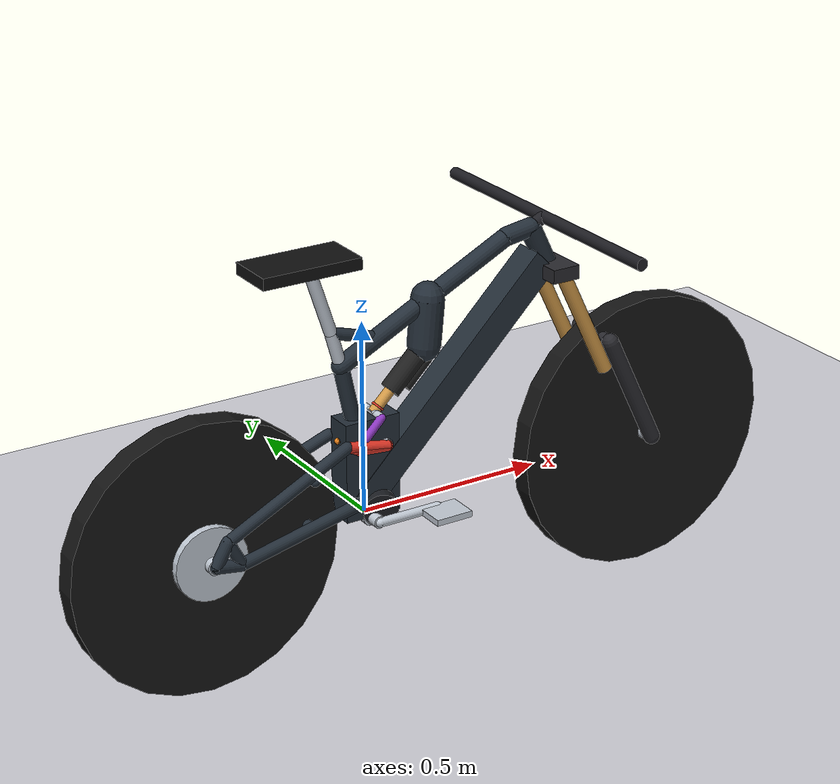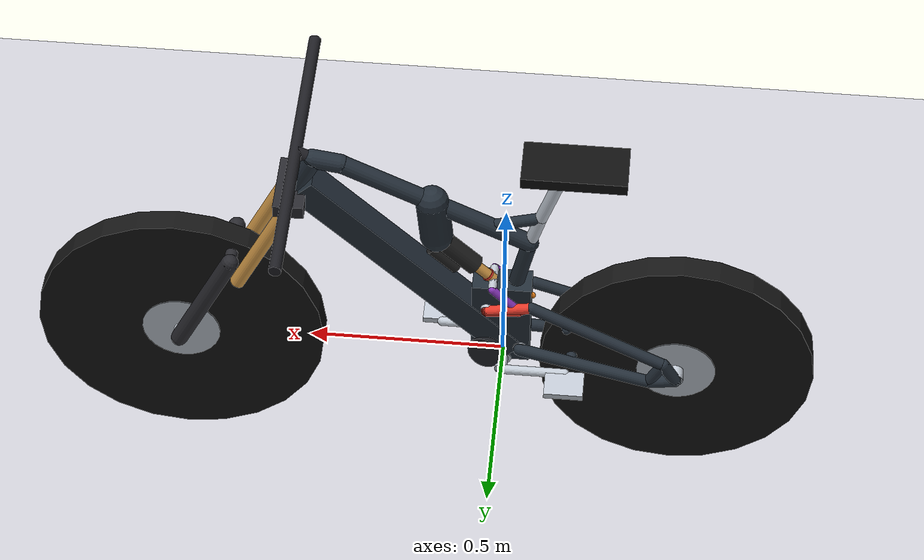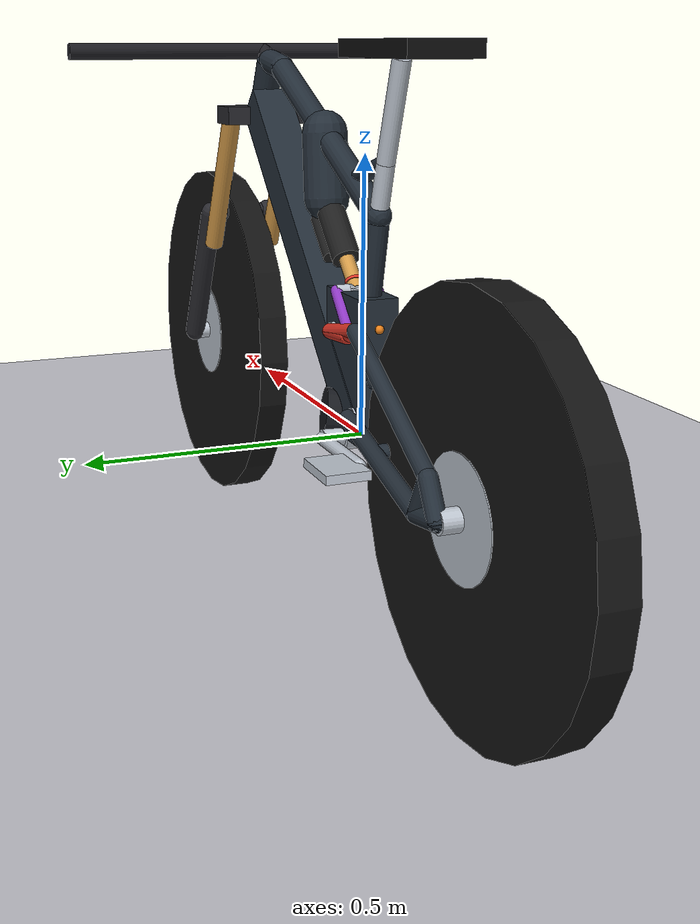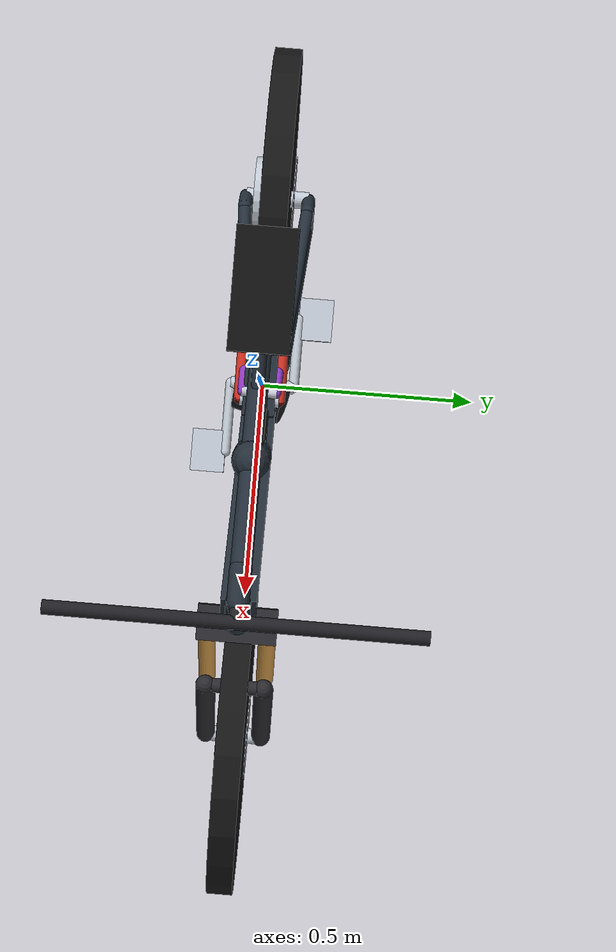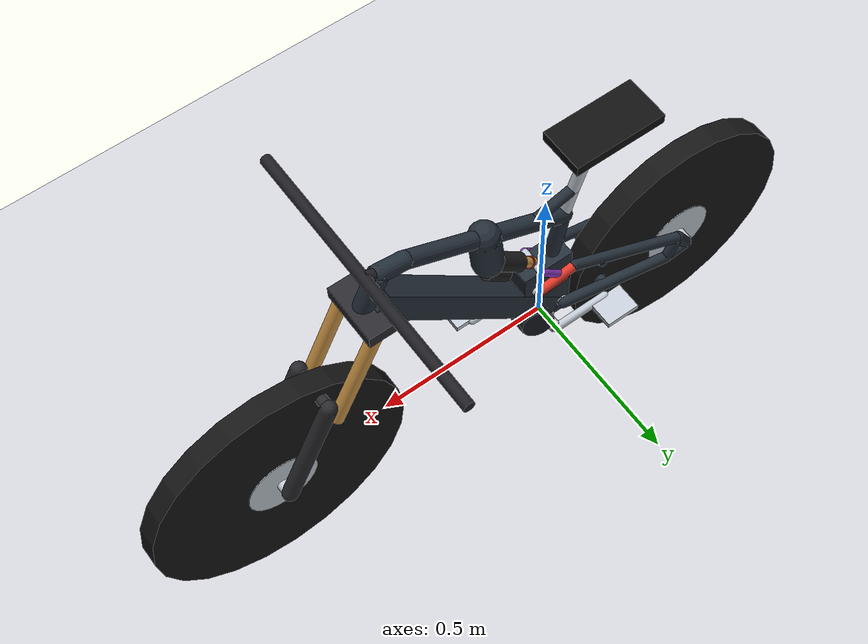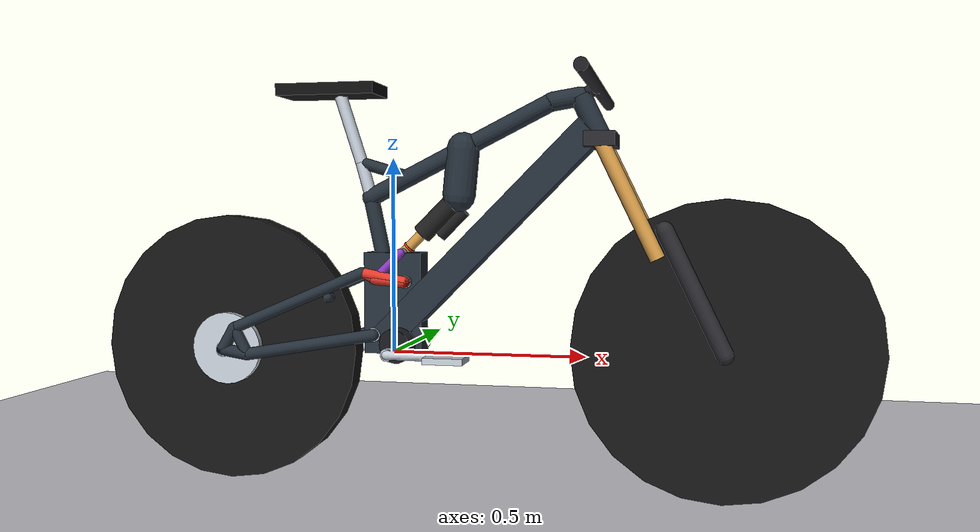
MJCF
<?xml version="1.0" encoding="utf-8"?>
<mujoco model="enduro_bike_horst_yoke">
  <compiler angle="degree" coordinate="local" inertiafromgeom="auto" autolimits="true"/>
  <option gravity="0 0 -9.81" timestep="0.002" integrator="implicitfast" iterations="100" tolerance="1e-10"/>
  <visual>
    <global elevation="-20" azimuth="140" offwidth="1920" offheight="1080"/>
    <quality shadowsize="4096"/>
  </visual>
  <asset>
    <texture name="grid_tex" type="2d" builtin="checker" width="512" height="512" rgb1="0.85 0.85 0.88" rgb2="0.75 0.75 0.78"/>
    <texture name="skybox" type="skybox" builtin="gradient" rgb1="0.4 0.6 0.8" rgb2="0.1 0.15 0.25" width="512" height="512"/>
    <material name="mat_floor" texture="grid_tex" texrepeat="25 25" reflectance="0.08"/>
    <material name="mat_frame" rgba="0.14 0.18 0.22 1.0" specular="0.4" shininess="0.5"/>
    <material name="mat_linkage" rgba="0.88 0.22 0.16 1.0" specular="0.7" shininess="0.8"/>
    <material name="mat_yoke" rgba="0.55 0.22 0.75 1.0" specular="0.6" shininess="0.7"/>
    <material name="mat_kashima" rgba="0.82 0.60 0.28 1.0" specular="0.95" shininess="0.95"/>
    <material name="mat_damper_body" rgba="0.12 0.12 0.12 1.0" specular="0.8" shininess="0.85"/>
    <material name="mat_fork_lower" rgba="0.16 0.16 0.18 1.0" specular="0.3" shininess="0.4"/>
    <material name="mat_tire" rgba="0.08 0.08 0.08 1.0" specular="0.05" shininess="0.1"/>
    <material name="mat_rim" rgba="0.22 0.24 0.26 1.0" specular="0.5" shininess="0.6"/>
    <material name="mat_metal" rgba="0.75 0.78 0.82 1.0" specular="0.85" shininess="0.9"/>
    <material name="mat_saddle" rgba="0.06 0.06 0.06 1.0" specular="0.1" shininess="0.2"/>
    <material name="mat_handlebar" rgba="0.12 0.12 0.14 1.0" specular="0.4" shininess="0.5"/>
    <material name="mat_pivot_yellow" rgba="0.98 0.85 0.12 1.0" specular="0.9" shininess="0.9"/>
    <material name="mat_stand" rgba="0.22 0.25 0.30 1.0" specular="0.5" shininess="0.6"/>
    <material name="mat_obstacle" rgba="0.85 0.50 0.15 1.0" specular="0.4" shininess="0.4"/>
    <material name="mat_pit" rgba="0.22 0.35 0.55 1.0" specular="0.4" shininess="0.5"/>
    <material name="mat_motor" rgba="0.10 0.11 0.13 1.0" specular="0.6" shininess="0.7"/>
    <material name="mat_battery" rgba="0.08 0.08 0.10 1.0" specular="0.5" shininess="0.6"/>
    <material name="mat_cg_marker" rgba="0.95 0.20 0.85 0.9" specular="0.9" shininess="0.9"/>
    <material name="mat_rider" rgba="0.18 0.38 0.68 0.95" specular="0.4" shininess="0.5"/>
  </asset>
  <worldbody>
    <light directional="true" diffuse="0.85 0.85 0.85" specular="0.25 0.25 0.25" pos="1.5 -2.5 3.5" dir="-0.3 0.6 -1.0"/>
    <light directional="true" diffuse="0.45 0.45 0.45" specular="0.1 0.1 0.1" pos="-2.5 2.5 3.0" dir="0.6 -0.6 -1.0"/>
    <geom name="floor" type="plane" pos="0 0 -0.349500" size="50 50 0.1" material="mat_floor" conaffinity="1" contype="1" friction="1.3 0.005 0.0001"/>
    <body name="frame" pos="0 0 0">
      <geom name="geom_bb_shell" type="cylinder" fromto="0 -0.0365 0 0 0.0365 0" size="0.024" mass="0.30" material="mat_metal"/>
      <geom name="geom_motor_core" type="cylinder" fromto="0.015 -0.055 0.020 0.045 0.055 0.035" size="0.045" mass="2.90" material="mat_motor"/>
      <geom name="geom_crank_spindle" type="cylinder" fromto="0 -0.075000 0 0 0.075000 0" size="0.016" mass="0.100" material="mat_metal" contype="0" conaffinity="0"/>
      <geom name="geom_crank_arm_front" type="capsule" fromto="0 -0.075000 0 0.165000 -0.075000 0.000000" size="0.012" mass="0.200" material="mat_metal" contype="0" conaffinity="0"/>
      <geom name="geom_pedal_front" type="box" pos="0.165000 -0.115000 0.000000" size="0.050 0.040 0.008" mass="0.175" material="mat_metal" contype="0" conaffinity="0"/>
      <geom name="geom_crank_arm_rear" type="capsule" fromto="0 0.075000 0 -0.165000 0.075000 0.000000" size="0.012" mass="0.200" material="mat_metal" contype="0" conaffinity="0"/>
      <geom name="geom_pedal_rear" type="box" pos="-0.165000 0.115000 0.000000" size="0.050 0.040 0.008" mass="0.175" material="mat_metal" contype="0" conaffinity="0"/>
      <geom name="geom_downtube" type="box" pos="0.239137 0.000000 0.295958" size="0.378572 0.038 0.037848" euler="0 -45.296452 0" mass="0.60" material="mat_frame"/>
      <geom name="geom_battery_pack" type="capsule" fromto="0.052834 0.000000 0.106886 0.292834 0.000000 0.346886" size="0.032" mass="4.30" material="mat_battery"/>
      <geom name="geom_headtube" type="cylinder" fromto="0.532605 0.000000 0.538145 0.480000 0.000000 0.646000" size="0.027" mass="0.40" material="mat_frame"/>
      <geom name="geom_toptube_bridge" type="capsule" fromto="0.480000 0.000000 0.646000 0.410000 0.000000 0.635000" size="0.024" mass="0.25" material="mat_frame"/>
      <geom name="geom_toptube_main" type="capsule" fromto="0.410000 0.000000 0.635000 -0.060000 0.000000 0.400000" size="0.023" mass="0.45" material="mat_frame"/>
      <geom name="geom_seattube" type="capsule" fromto="-0.060000 0.000000 0.400000 -0.030000 0.000000 0.258000" size="0.020" mass="0.05" material="mat_frame"/>
      <geom name="geom_frame_casting" type="box" pos="0.005661 0 0.129000" size="0.075 0.036 0.130" mass="0.60" material="mat_frame" contype="0" conaffinity="0"/>
      <geom name="geom_seatpost" type="cylinder" fromto="-0.060000 0.000000 0.400000 -0.085000 0.000000 0.490000" size="0.016" mass="0.120129" material="mat_metal"/>
      <geom name="geom_seatpost_upper" type="cylinder" fromto="-0.085000 0.000000 0.490000 -0.140206 0.000000 0.660000" size="0.016" mass="0.229871" material="mat_metal"/>
      <geom name="geom_seat_gusset" type="capsule" fromto="-0.085000 0.000000 0.490000 0.043400 0.000000 0.451700" size="0.015" mass="0.10" material="mat_frame"/>
      <geom name="geom_frame_junction" type="capsule" fromto="0.184400 0.000000 0.522200 0.173221 0.000000 0.403651" size="0.042" mass="0.10" material="mat_frame"/>
      <geom name="geom_saddle" type="box" pos="-0.164206 0.000000 0.675000" size="0.13 0.065 0.015" mass="0.55" material="mat_saddle"/>
      <geom name="geom_p0_mount" type="cylinder" fromto="-0.044902 -0.035 0.046393 -0.044902 0.035 0.046393" size="0.016" mass="0.10" material="mat_metal"/>
      <geom name="geom_p5_mount" type="cylinder" fromto="0.041321 -0.048 0.184457 0.041321 0.048 0.184457" size="0.013" mass="0.10" material="mat_metal"/>
      <geom name="geom_p7_mount" type="cylinder" fromto="0.173221 -0.020 0.403651 0.173221 0.020 0.403651" size="0.012" mass="0.10" material="mat_metal"/>
      <site name="site_BB" pos="0.000000 0.000000 0.000000" size="0.008" rgba="0.9 0.6 0.1 1.0"/>
      <site name="site_P0" pos="-0.044902 0.000000 0.046393" size="0.008" rgba="0.2 0.8 0.2 1.0"/>
      <site name="site_P5" pos="0.041321 0.000000 0.184457" size="0.008" rgba="0.8 0.2 0.2 1.0"/>
      <site name="site_P7" pos="0.173221 0.000000 0.403651" size="0.008" rgba="0.1 0.6 0.9 1.0"/>
      <site name="site_P8" pos="0.410000 0.000000 0.635000" size="0.006" rgba="0.5 0.5 0.5 1.0"/>
      <site name="site_P9" pos="-0.085000 0.000000 0.490000" size="0.006" rgba="0.5 0.5 0.5 1.0"/>
      <site name="site_P10" pos="-0.060000 0.000000 0.400000" size="0.006" rgba="0.5 0.5 0.5 1.0"/>
      <site name="site_P11" pos="0.480000 0.000000 0.646000" size="0.008" rgba="0.9 0.1 0.1 1.0"/>
      <site name="site_HT_bot" pos="0.532605 0.000000 0.538145" size="0.008" rgba="0.9 0.1 0.1 1.0"/>
      <site name="site_CG" pos="0.149767 0.000000 0.183505" size="0.012" rgba="0.95 0.20 0.85 0.9"/>
      <site name="site_top_tube_kink" pos="0.410000 0.000000 0.635000" size="0.005" rgba="0.5 0.5 0.5 0.8"/>
      <site name="site_seat_collar" pos="-0.085000 0.000000 0.490000" size="0.005" rgba="0.5 0.5 0.5 0.8"/>
      <site name="site_seatpost_top" pos="-0.140206 0.000000 0.660000" size="0.005" rgba="0.5 0.5 0.5 0.8"/>
      <site name="site_seat_tube_junction" pos="-0.060000 0.000000 0.400000" size="0.005" rgba="0.5 0.5 0.5 0.8"/>
      <site name="site_headtube_top" pos="0.480000 0.000000 0.646000" size="0.006" rgba="0.9 0.1 0.1 0.8"/>
      <site name="site_headtube_bottom" pos="0.532605 0.000000 0.538145" size="0.006" rgba="0.9 0.1 0.1 0.8"/>
      <body name="steer" pos="0.532605 0.000000 0.538145">
        <joint name="steer_joint" type="hinge" pos="0 0 0" axis="-0.438371 0.000000 0.898794" range="-60 60" damping="1.5"/>
        <geom name="geom_steerer_tube" type="cylinder" fromto="0 0 0 -0.052605 0.000000 0.107855" size="0.014" mass="0.25" material="mat_metal"/>
        <geom name="geom_stem" type="cylinder" fromto="-0.052605 0.000000 0.107855 -0.012605 0.000000 0.127855" size="0.016" mass="0.15" material="mat_handlebar"/>
        <geom name="geom_handlebar" type="cylinder" fromto="-0.012605 -0.40 0.127855 -0.012605 0.40 0.127855" size="0.0155" mass="0.40" material="mat_handlebar"/>
        <geom name="geom_fork_crown" type="box" pos="0 0 0" size="0.038 0.085 0.018" mass="0.30" material="mat_fork_lower"/>
        <geom name="geom_stanchion_l" type="cylinder" fromto="0 0.065 0 0.140279 0.065 -0.287614" size="0.019" mass="0.425" material="mat_kashima"/>
        <geom name="geom_stanchion_r" type="cylinder" fromto="0 -0.065 0 0.140279 -0.065 -0.287614" size="0.019" mass="0.425" material="mat_kashima"/>
        <body name="fork_lower" pos="0 0 0">
          <joint name="fork_travel" type="slide" pos="0 0 0" axis="-0.438371 0.000000 0.898794" range="0 0.180000" stiffness="0" damping="0" springref="0"/>
          <geom name="geom_fork_lower_l" type="capsule" fromto="0.155789 0.065 -0.219043 0.300451 0.065 -0.515645" size="0.022" mass="0.55" material="mat_fork_lower"/>
          <geom name="geom_fork_lower_r" type="capsule" fromto="0.155789 -0.065 -0.219043 0.300451 -0.065 -0.515645" size="0.022" mass="0.55" material="mat_fork_lower"/>
          <geom name="geom_fork_arch" type="capsule" fromto="0.155789 -0.065 -0.219043 0.155789 0.065 -0.219043" size="0.016" mass="0.25" material="mat_fork_lower"/>
          <geom name="geom_front_dropout" type="cylinder" fromto="0.300451 -0.065 -0.515645 0.300451 0.065 -0.515645" size="0.012" mass="0.15" material="mat_metal"/>
          <site name="site_PFA" pos="0.300451 0.000000 -0.515645" size="0.008" rgba="0.1 0.7 0.9 1.0"/>
          <body name="front_wheel" pos="0.300451 0.000000 -0.515645">
            <joint name="front_wheel_spin" type="hinge" pos="0 0 0" axis="0 1 0" damping="0.01"/>
            <geom name="geom_front_hub" type="cylinder" fromto="0 -0.055 0 0 0.055 0" size="0.018" mass="0.35" material="mat_metal"/>
            <geom name="geom_front_rim" type="cylinder" fromto="0 -0.015 0 0 0.015 0" size="0.320" mass="0.45" material="mat_rim" contype="0" conaffinity="0"/>
            <geom name="geom_front_tire" type="cylinder" fromto="0 -0.030 0 0 0.030 0" size="0.372000" mass="1.35" material="mat_tire" contype="1" conaffinity="1" friction="1.2 0.005 0.0001"/>
            <geom name="geom_front_rotor" type="cylinder" fromto="0 0.032 0 0 0.034 0" size="0.1015" mass="0.25" material="mat_metal" contype="0" conaffinity="0"/>
          </body>
        </body>
      </body>
      <body name="chainstay" pos="-0.044902 0.000000 0.046393">
        <joint name="main_pivot" type="hinge" pos="0 0 0" axis="0 1 0" damping="0.5"/>
        <geom name="geom_cs_sleeve" type="cylinder" fromto="0 -0.040 0 0 0.040 0" size="0.018" mass="0.25" material="mat_metal"/>
        <geom name="geom_cs_left" type="capsule" fromto="0 0.045 0 -0.334216 0.074 -0.054835" size="0.016" mass="0.40" material="mat_frame"/>
        <geom name="geom_cs_right" type="capsule" fromto="0 -0.045 0 -0.334216 -0.074 -0.054835" size="0.016" mass="0.40" material="mat_frame"/>
        <geom name="geom_cs_bridge" type="capsule" fromto="-0.133687 -0.055 -0.021934 -0.133687 0.055 -0.021934" size="0.014" mass="0.20" material="mat_frame"/>
        <site name="site_P2_cs" pos="-0.334216 0.000000 -0.054835" size="0.008" rgba="0.1 0.9 0.1 1.0"/>
        <body name="seatstay" pos="-0.334216 0.000000 -0.054835">
          <joint name="horst_pivot" type="hinge" pos="0 0 0" axis="0 1 0" damping="0.3"/>
          <geom name="geom_horst_sleeve_l" type="cylinder" fromto="0 0.068 0 0 0.080 0" size="0.013" mass="0.075" material="mat_metal"/>
          <geom name="geom_horst_sleeve_r" type="cylinder" fromto="0 -0.080 0 0 -0.068 0" size="0.013" mass="0.075" material="mat_metal"/>
          <geom name="geom_ss_left" type="capsule" fromto="-0.034882 0.074 0.068429 0.307403 0.045 0.215041" size="0.015" mass="0.25" material="mat_frame"/>
          <geom name="geom_ss_right" type="capsule" fromto="-0.034882 -0.074 0.068429 0.307403 -0.045 0.215041" size="0.015" mass="0.25" material="mat_frame"/>
          <geom name="geom_dropout_bottom_l" type="capsule" fromto="0 0.074 0 -0.068376 0.074 0.010942" size="0.016" mass="0.045" material="mat_frame"/>
          <geom name="geom_dropout_rear_l" type="capsule" fromto="-0.068376 0.074 0.010942 -0.034882 0.074 0.068429" size="0.016" mass="0.045" material="mat_frame"/>
          <geom name="geom_dropout_front_l" type="capsule" fromto="0 0.074 0 -0.034882 0.074 0.068429" size="0.015" mass="0.045" material="mat_frame"/>
          <geom name="geom_dropout_bottom_r" type="capsule" fromto="0 -0.074 0 -0.068376 -0.074 0.010942" size="0.016" mass="0.045" material="mat_frame"/>
          <geom name="geom_dropout_rear_r" type="capsule" fromto="-0.068376 -0.074 0.010942 -0.034882 -0.074 0.068429" size="0.016" mass="0.045" material="mat_frame"/>
          <geom name="geom_dropout_front_r" type="capsule" fromto="0 -0.074 0 -0.034882 -0.074 0.068429" size="0.015" mass="0.045" material="mat_frame"/>
          <geom name="geom_ss_bridge" type="capsule" fromto="0.215182 -0.050 0.150528 0.215182 0.050 0.150528" size="0.013" mass="0.13" material="mat_frame"/>
          <site name="site_P3_ss" pos="0.307403 0.000000 0.215041" size="0.008" rgba="0.9 0.5 0.1 1.0"/>
          <site name="site_P12_ss" pos="-0.034882 0.000000 0.068429" size="0.007" rgba="0.9 0.6 0.1 1.0"/>
          <site name="site_PRA" pos="-0.068376 0.000000 0.010942" size="0.008" rgba="0.2 0.4 0.9 1.0"/>
          <body name="rear_wheel" pos="-0.068376 0.000000 0.010942">
            <joint name="rear_wheel_spin" type="hinge" pos="0 0 0" axis="0 1 0" damping="0.01"/>
            <geom name="geom_rear_hub" type="cylinder" fromto="0 -0.074 0 0 0.074 0" size="0.020" mass="0.30" material="mat_metal"/>
            <geom name="geom_rear_rim" type="cylinder" fromto="0 -0.015 0 0 0.015 0" size="0.300" mass="0.40" material="mat_rim" contype="0" conaffinity="0"/>
            <geom name="geom_rear_tire" type="cylinder" fromto="0 -0.032 0 0 0.032 0" size="0.352000" mass="1.50" material="mat_tire" contype="1" conaffinity="1" friction="1.2 0.005 0.0001"/>
            <geom name="geom_rear_cassette" type="cylinder" fromto="0 -0.055 0 0 -0.035 0" size="0.095" mass="0.40" material="mat_metal" contype="0" conaffinity="0"/>
            <geom name="geom_rear_rotor" type="cylinder" fromto="0 0.038 0 0 0.040 0" size="0.1015" mass="0.20" material="mat_metal" contype="0" conaffinity="0"/>
          </body>
        </body>
      </body>
      <body name="rocker" pos="0.041321 0.000000 0.184457">
        <joint name="rocker_frame_pivot" type="hinge" pos="0 0 0" axis="0 1 0" damping="0.3"/>
        <geom name="geom_rocker_sleeve" type="cylinder" fromto="0 -0.045 0 0 0.045 0" size="0.016" mass="0.16" material="mat_metal"/>
        <geom name="geom_roc_arm_l1" type="capsule" fromto="0 0.045 0 -0.113037 0.045 0.022142" size="0.014" mass="0.04" material="mat_linkage"/>
        <geom name="geom_roc_arm_r1" type="capsule" fromto="0 -0.045 0 -0.113037 -0.045 0.022142" size="0.014" mass="0.04" material="mat_linkage"/>
        <geom name="geom_roc_arm_l2" type="capsule" fromto="0 0.045 0 -0.079867 0.045 0.007006" size="0.014" mass="0.04" material="mat_linkage"/>
        <geom name="geom_roc_arm_r2" type="capsule" fromto="0 -0.045 0 -0.079867 -0.045 0.007006" size="0.014" mass="0.04" material="mat_linkage"/>
        <geom name="geom_roc_arm_l3" type="capsule" fromto="-0.113037 0.045 0.022142 -0.079867 0.045 0.007006" size="0.012" mass="0.04" material="mat_linkage"/>
        <geom name="geom_roc_arm_r3" type="capsule" fromto="-0.113037 -0.045 0.022142 -0.079867 -0.045 0.007006" size="0.012" mass="0.04" material="mat_linkage"/>
        <site name="site_P3_rocker" pos="-0.113037 0.000000 0.022142" size="0.008" rgba="0.9 0.5 0.1 1.0"/>
        <site name="site_P4_rocker" pos="-0.079867 0.000000 0.007006" size="0.008" rgba="0.7 0.2 0.8 1.0"/>
        <body name="shock_yoke" pos="-0.079867 0.000000 0.007006">
          <joint name="yoke_pivot" type="hinge" pos="0 0 0" axis="0 1 0" damping="0.2"/>
          <geom name="geom_yoke_pivot_p4" type="cylinder" fromto="0 -0.044 0 0 0.044 0" size="0.011" mass="0.06" material="mat_metal"/>
          <geom name="geom_yoke_arm_l" type="capsule" fromto="0 0.040 0 0.066954 0.038 0.067087" size="0.011" mass="0.08" material="mat_yoke"/>
          <geom name="geom_yoke_arm_r" type="capsule" fromto="0 -0.040 0 0.066954 -0.038 0.067087" size="0.011" mass="0.08" material="mat_yoke"/>
          <geom name="geom_yoke_bridge" type="capsule" fromto="0.050215 -0.038 0.050315 0.050215 0.038 0.050315" size="0.009" mass="0.04" material="mat_yoke"/>
          <geom name="geom_yoke_eyelet" type="cylinder" fromto="0.066954 -0.040 0.067087 0.066954 0.040 0.067087" size="0.011" mass="0.04" material="mat_metal"/>
          <site name="site_P6_yoke" pos="0.066954 0.000000 0.067087" size="0.008" rgba="0.6 0.1 0.7 1.0"/>
          <body name="shock_shaft" pos="0.066954 0.000000 0.067087">
            <geom name="geom_shock_lower_eyelet" type="cylinder" fromto="0 -0.016 0 0 0.016 0" size="0.011" mass="0.06" material="mat_metal"/>
            <geom name="geom_shock_shaft" type="cylinder" fromto="0 0 0 0.102428 0.000000 0.102632" size="0.014" mass="0.14" material="mat_kashima"/>
            <geom name="geom_shock_travel_indicator" type="cylinder" fromto="0.011302 0.000000 0.011325 0.014834 0.000000 0.014864" size="0.0165" mass="0.0" material="mat_linkage" contype="0" conaffinity="0"/>
            <body name="shock_body" pos="0.144813 0.000000 0.145101">
              <inertial pos="-0.033395 0.011400 -0.028962" quat="-0.10166406 0.38183084 -0.06020627 0.91664870" mass="0.400000" diaginertia="0.00084836 0.00071226 0.00023249"/>
              <joint name="shock_stroke" type="slide" pos="0 0 0" axis="-0.706403 -0.000000 -0.707810" range="0 0.065000" stiffness="0" damping="0" springref="0"/>
              <geom name="geom_shock_trunnion_boss_l" type="cylinder" fromto="0 0.019 0 0 0.027000 0" size="0.013" mass="0.02" material="mat_metal"/>
              <geom name="geom_shock_trunnion_boss_r" type="cylinder" fromto="0 -0.019 0 0 -0.027000 0" size="0.013" mass="0.02" material="mat_metal"/>
              <geom name="geom_shock_trunnion_overhang" type="cylinder" fromto="0 0 0 0.009890 0.000000 0.009909" size="0.024" mass="0.04" material="mat_damper_body"/>
              <geom name="geom_shock_body" type="cylinder" fromto="0 0 0 -0.097484 -0.000000 -0.097678" size="0.026" mass="0.18" material="mat_damper_body"/>
              <geom name="geom_shock_piggyback" type="cylinder" fromto="0.011350 0.008000 -0.036758 -0.052226 0.008000 -0.100461" size="0.018" mass="0.10" material="mat_damper_body"/>
              <geom name="geom_shock_piggy_bridge" type="cylinder" fromto="-0.021192 -0.000000 -0.021234 0.002873 0.008000 -0.045252" size="0.010" mass="0.04" material="mat_damper_body"/>
              <site name="site_P7_shock" pos="0 0 0" size="0.008" rgba="0.1 0.6 0.9 1.0"/>
            </body>
          </body>
        </body>
      </body>
    </body>
  </worldbody>
  <equality>
    <connect name="seatstay_rocker_joint" site1="site_P3_ss" site2="site_P3_rocker" solref="0.0005 1" solimp="0.99 0.999 0.0001 0.5 2"/>
    <connect name="shock_frame_joint" site1="site_P7_shock" site2="site_P7" solref="0.0005 1" solimp="0.99 0.999 0.0001 0.5 2"/>
  </equality>
  <contact>
    <exclude body1="frame" body2="steer"/>
    <exclude body1="frame" body2="fork_lower"/>
    <exclude body1="frame" body2="chainstay"/>
    <exclude body1="frame" body2="seatstay"/>
    <exclude body1="frame" body2="rocker"/>
    <exclude body1="frame" body2="shock_yoke"/>
    <exclude body1="frame" body2="shock_shaft"/>
    <exclude body1="frame" body2="shock_body"/>
    <exclude body1="frame" body2="front_wheel"/>
    <exclude body1="frame" body2="rear_wheel"/>
    <exclude body1="steer" body2="fork_lower"/>
    <exclude body1="steer" body2="chainstay"/>
    <exclude body1="steer" body2="seatstay"/>
    <exclude body1="steer" body2="rocker"/>
    <exclude body1="steer" body2="shock_yoke"/>
    <exclude body1="steer" body2="shock_shaft"/>
    <exclude body1="steer" body2="shock_body"/>
    <exclude body1="steer" body2="front_wheel"/>
    <exclude body1="steer" body2="rear_wheel"/>
    <exclude body1="fork_lower" body2="chainstay"/>
    <exclude body1="fork_lower" body2="seatstay"/>
    <exclude body1="fork_lower" body2="rocker"/>
    <exclude body1="fork_lower" body2="shock_yoke"/>
    <exclude body1="fork_lower" body2="shock_shaft"/>
    <exclude body1="fork_lower" body2="shock_body"/>
    <exclude body1="fork_lower" body2="front_wheel"/>
    <exclude body1="fork_lower" body2="rear_wheel"/>
    <exclude body1="chainstay" body2="seatstay"/>
    <exclude body1="chainstay" body2="rocker"/>
    <exclude body1="chainstay" body2="shock_yoke"/>
    <exclude body1="chainstay" body2="shock_shaft"/>
    <exclude body1="chainstay" body2="shock_body"/>
    <exclude body1="chainstay" body2="front_wheel"/>
    <exclude body1="chainstay" body2="rear_wheel"/>
    <exclude body1="seatstay" body2="rocker"/>
    <exclude body1="seatstay" body2="shock_yoke"/>
    <exclude body1="seatstay" body2="shock_shaft"/>
    <exclude body1="seatstay" body2="shock_body"/>
    <exclude body1="seatstay" body2="front_wheel"/>
    <exclude body1="seatstay" body2="rear_wheel"/>
    <exclude body1="rocker" body2="shock_yoke"/>
    <exclude body1="rocker" body2="shock_shaft"/>
    <exclude body1="rocker" body2="shock_body"/>
    <exclude body1="rocker" body2="front_wheel"/>
    <exclude body1="rocker" body2="rear_wheel"/>
    <exclude body1="shock_yoke" body2="shock_shaft"/>
    <exclude body1="shock_yoke" body2="shock_body"/>
    <exclude body1="shock_yoke" body2="front_wheel"/>
    <exclude body1="shock_yoke" body2="rear_wheel"/>
    <exclude body1="shock_shaft" body2="shock_body"/>
    <exclude body1="shock_shaft" body2="front_wheel"/>
    <exclude body1="shock_shaft" body2="rear_wheel"/>
    <exclude body1="shock_body" body2="front_wheel"/>
    <exclude body1="shock_body" body2="rear_wheel"/>
    <exclude body1="front_wheel" body2="rear_wheel"/>
  </contact>
  <actuator>
    <position name="steer_servo" joint="steer_joint" kp="150" kv="15" ctrlrange="-45 45"/>
    <motor name="rear_drive_motor" joint="rear_wheel_spin" gear="1" ctrlrange="-150 150"/>
    <motor name="front_brake" joint="front_wheel_spin" gear="1" ctrlrange="-200 0"/>
    <motor name="rear_brake" joint="rear_wheel_spin" gear="1" ctrlrange="-200 0"/>
  </actuator>
  <sensor>
    <jointpos name="sensor_shock_stroke" joint="shock_stroke"/>
    <jointvel name="sensor_shock_velocity" joint="shock_stroke"/>
    <jointpos name="sensor_fork_travel" joint="fork_travel"/>
    <jointvel name="sensor_fork_velocity" joint="fork_travel"/>
    <jointpos name="sensor_steer_angle" joint="steer_joint"/>
    <jointvel name="sensor_steer_velocity" joint="steer_joint"/>
    <jointpos name="sensor_chainstay_angle" joint="main_pivot"/>
    <jointpos name="sensor_horst_angle" joint="horst_pivot"/>
    <jointpos name="sensor_rocker_angle" joint="rocker_frame_pivot"/>
    <jointpos name="sensor_yoke_angle" joint="yoke_pivot"/>
    <jointvel name="sensor_front_wheel_speed" joint="front_wheel_spin"/>
    <jointvel name="sensor_rear_wheel_speed" joint="rear_wheel_spin"/>
    <accelerometer name="sensor_frame_accel" site="site_BB"/>
    <gyro name="sensor_frame_gyro" site="site_BB"/>
    <framepos name="sensor_rear_axle_pos" objtype="site" objname="site_PRA"/>
    <framepos name="sensor_front_axle_pos" objtype="site" objname="site_PFA"/>
    <subtreecom name="sensor_subtree_com" body="frame"/>
  </sensor>
</mujoco>
